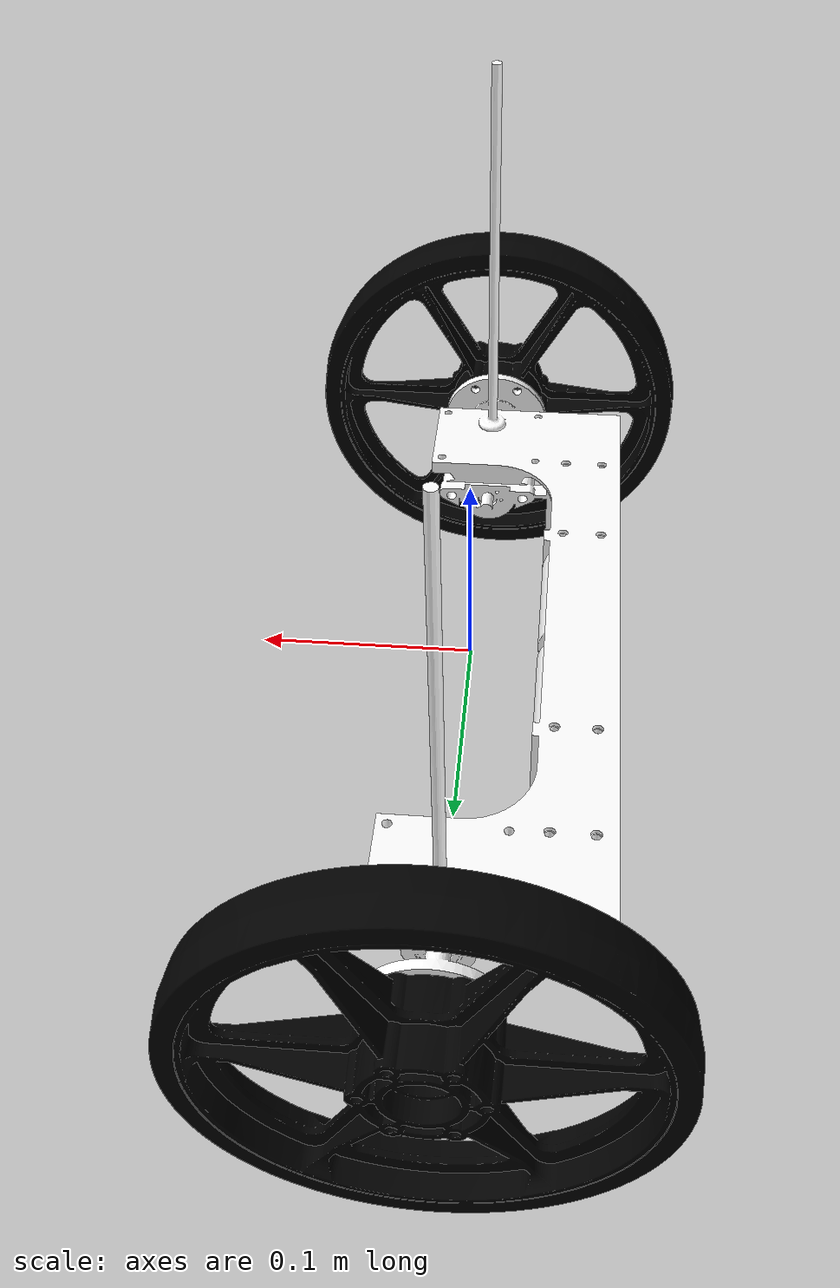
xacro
<?xml version="1.0"?>
<robot  xmlns:xacro="http://www.ros.org/wiki/xacro">
	<xacro:include filename="$(find robbie_description)/urdf/lhm/lhm.transmission.xacro" />
  <xacro:property name="PI" value="3.1415926535897931"/>

	<link name="bwheel_l">
		<collision>
		  <origin rpy="0 0 0" xyz="0 0 0"/>
		  <geometry>
		   <mesh filename="package://robbie_description/meshes/butt_wheelFini_collision.STL"/>
		 </geometry>
	 </collision>
	 <visual>
		<origin rpy="0 0 0" xyz="0 0 0"/>
		<geometry>
		  <mesh filename="package://robbie_description/meshes/butt_wheelFini.STL" scale="1 1 1"/>
		</geometry>
		<material name="black">
		  <color rgba="0.0 0.0 0.0 1.0"/>
		</material>
	</visual>
	<inertial>
		<origin xyz="0 0 0" rpy="0 0 0"/>
		<mass value="${bWheelMass}"/>
		<cylinder_inertia m="${bWheelMass}" r="${bWheelRadius}" h="${bWheelLength}"/>
	</inertial>
	</link>

	<link name="bwheel_r">
		<collision>
		  <origin rpy="0 0 0" xyz="0 0 0"/>
		  <geometry>
		   <mesh filename="package://robbie_description/meshes/butt_wheelFini_collision.STL"/>
		 </geometry>
	 </collision>
	 <visual>
		<origin rpy="0 0 0" xyz="0 0 0"/>
		<geometry>
		  <mesh filename="package://robbie_description/meshes/butt_wheelFini.STL" scale="1 1 1"/>
		</geometry>
		<material name="black">
		  <color rgba="0.0 0.0 0.0 1.0"/>
		</material>
	</visual>
	<inertial>
		<origin xyz="0 0 0" rpy="0 0 0"/>
		<mass value="${bWheelMass}"/>
		<cylinder_inertia m="${bWheelMass}" r="${bWheelRadius}" h="${bWheelLength}"/>
	</inertial>
	</link>

	<link name="butt">
		<collision>
		  <origin rpy="0 0 0" xyz="0 0 0"/>
		  <geometry>
		   <mesh filename="package://robbie_description/meshes/butt_PART_collision.STL"/>
		 </geometry>
	 </collision>
	 <visual>
		<origin rpy="0 0 0" xyz="0 0 0"/>
		<geometry>
		  <mesh filename="package://robbie_description/meshes/butt_PART.STL" scale="1 1 1"/>
		</geometry>
		<material name="white">
		  <color rgba="1 1 1 1"/>
		</material>
	</visual>
	<inertial>
		<origin xyz="0 0 ${bHeight/2}" rpy="0 0 0"/>
		<mass value="${bMass}"/>
		<box_inertia m="${bMass}" x="${bWidth}" y="${bDepth}" z="${bHeight}"/>
	</inertial>
	</link>

	<joint name="b_wheel_l" type="continuous">
		<origin rpy="0 0 0" xyz="0 .2125 0"/>
		<parent link="butt"/>
		<child link="bwheel_l"/>
		<axis xyz="0 1 0"/>
		<dynamics damping="1"/>
		<limit effort="300" lower="-1" upper="0.383972435" velocity="0.1"/>
	</joint>

	<joint name="b_wheel_r" type="continuous">
		<origin rpy="0 0 0" xyz="0 -0.2125 0"/>
		<parent link="butt"/>
		<child link="bwheel_r"/>
		<axis xyz="0 1 0"/>
		<dynamics damping="1"/>
		<limit effort="300" lower="-1" upper="0.383972435" velocity="0.1"/>
	</joint>

</robot>
